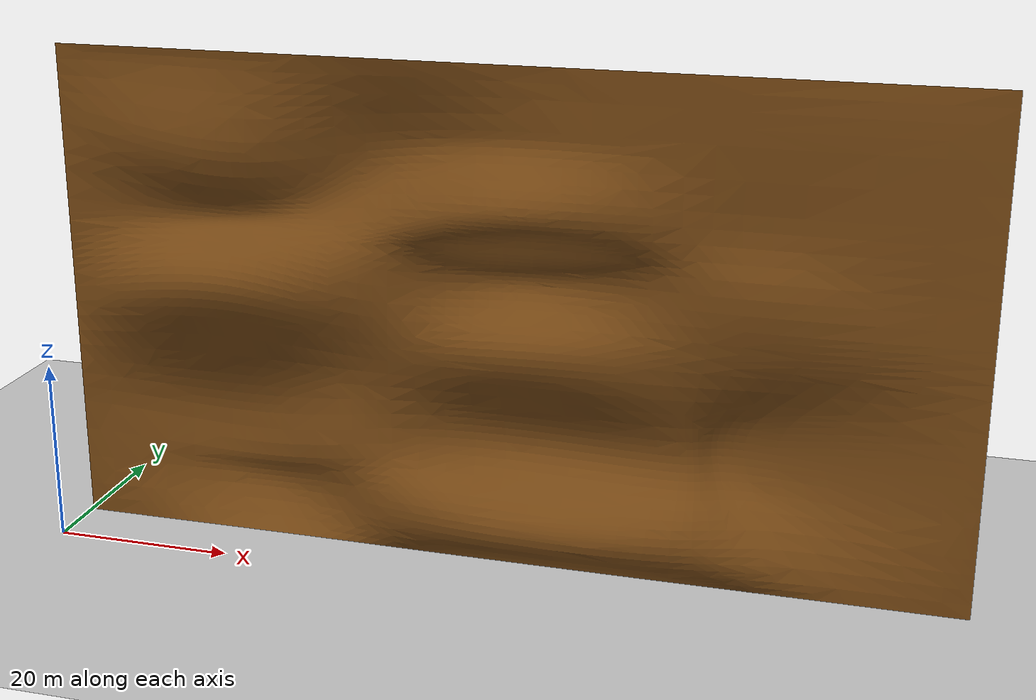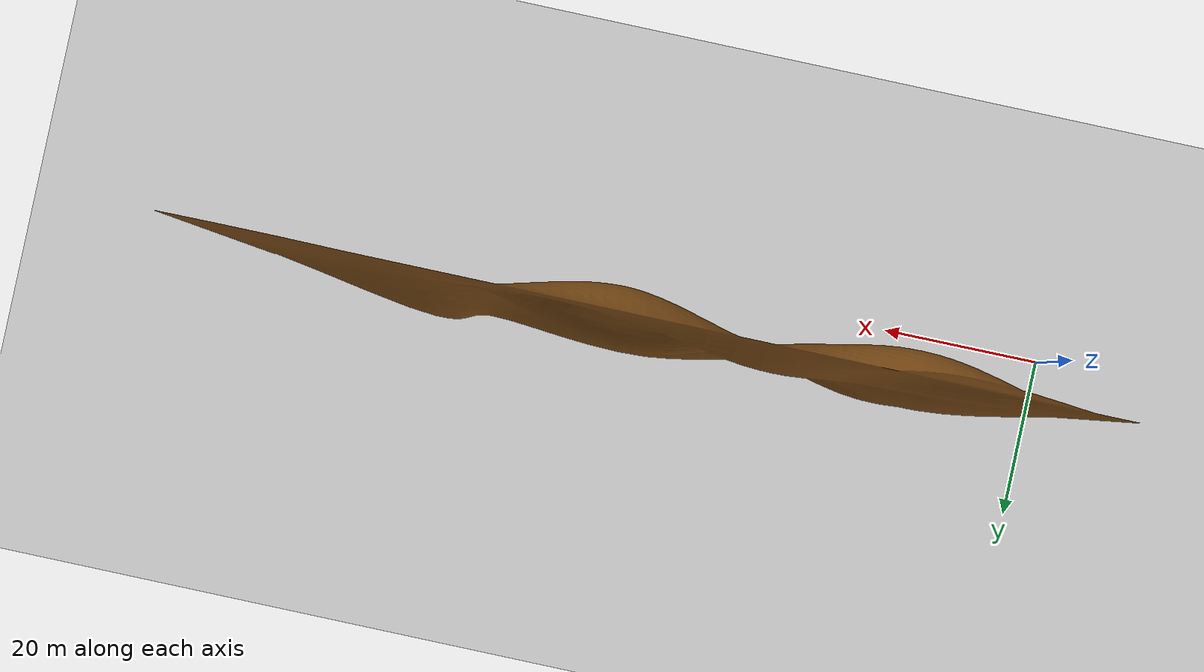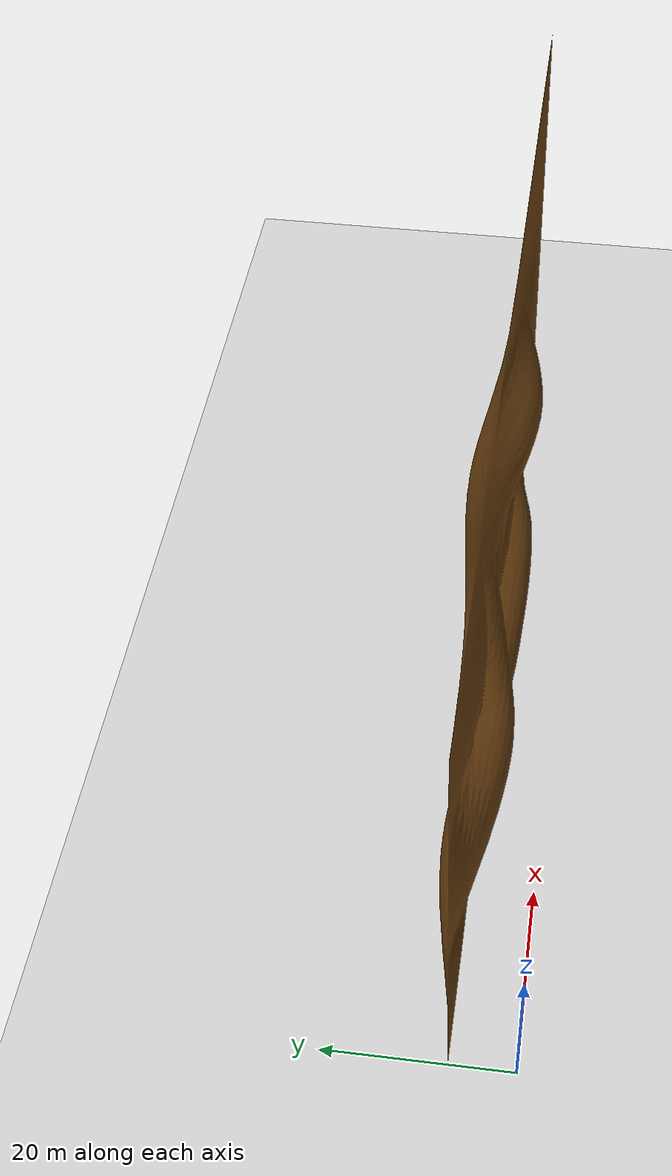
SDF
<sdf version="1.4">
    <world name="default">
      <include>
        <uri>model://sun</uri>
      </include>

      <!-- Faster physics solver to run the simulation on limited hardware -->
      <physics default="1" name="ODE_SOLVER" type="ode">
       <real_time_update_rate>100.0</real_time_update_rate>
       <max_step_size>0.01</max_step_size>
       <real_time_factor>1.0</real_time_factor>
      </physics>

      <include>
       <uri>model://ground_plane</uri>
     </include>

     <!-- Terrain model -->
    <model name="terrain">
      <include>
        <uri>model://terrain</uri>
        <pose> 0.0 0 -0.2 0 0 0</pose>
      </include>
    </model>

    </world>
  </sdf>

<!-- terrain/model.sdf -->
<sdf version="1.6">
  <model name="terrain">
    <static>true</static>
    <link name="link">
      <collision name="collision">
        <geometry>
          <mesh>
            <scale>1 1 0.55</scale>
            <uri>model://terrain/meshes/terrain.dae</uri>
          </mesh>
        </geometry>
      </collision>
      <visual name="visual">
        <geometry>
          <mesh>
            <scale>1 1 0.55</scale>
            <uri>model://terrain/meshes/terrain.dae</uri>
          </mesh>
        </geometry>
        <material>
          <ambient>0.45 0.27 0.07 1</ambient>
          <diffuse>0.45 0.27 0.07 1</diffuse>
          <specular>0 0 0 0</specular>
          <emissive>0 0 0 1</emissive>
        </material>
      </visual>
    </link>

  </model>
</sdf>
